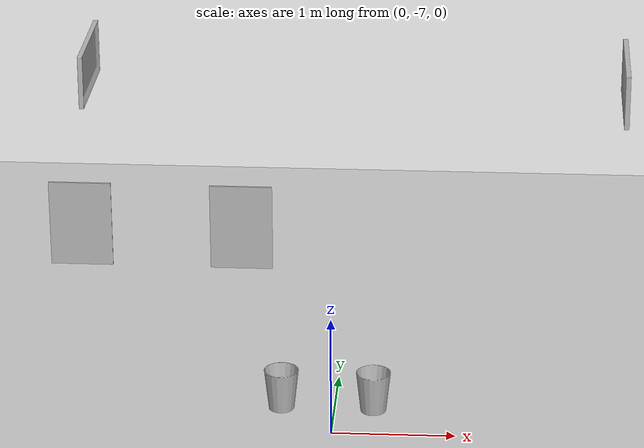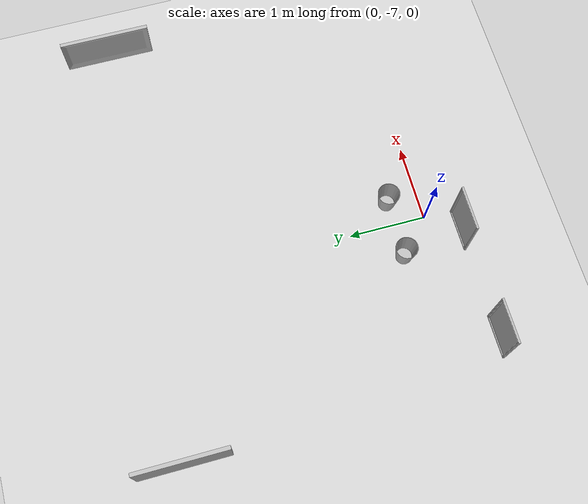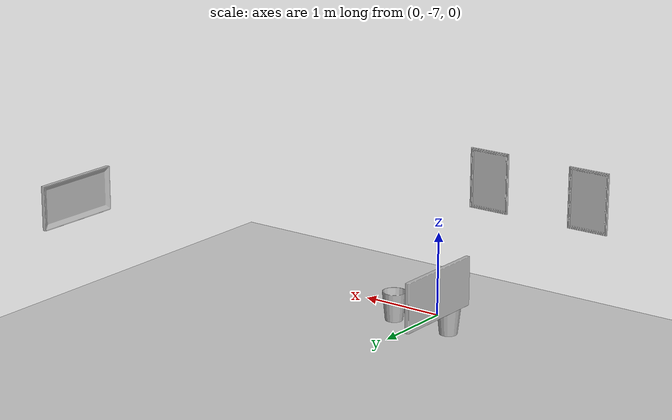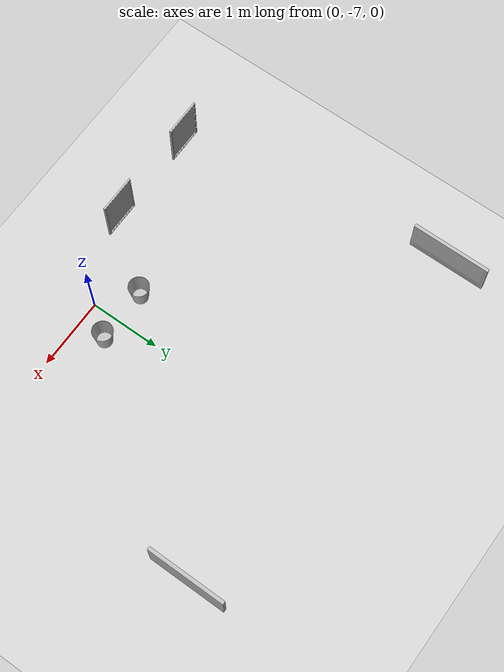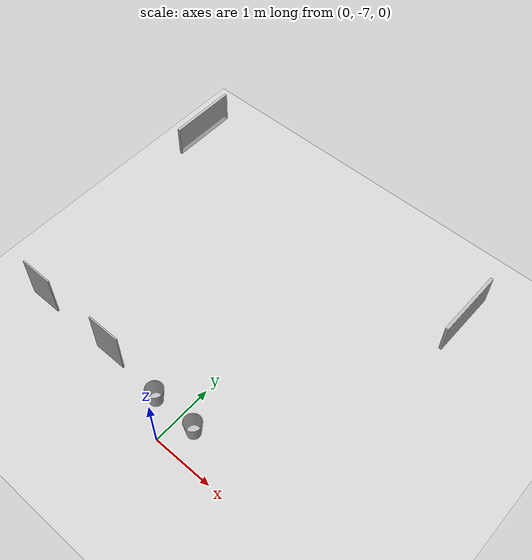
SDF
<sdf version="1.7">
 <world name="world">
  <model name="ground_plane">
   <static>1</static>
   <link name="link">
    <collision name="collision">
     <geometry><plane><normal>0 0 1</normal><size>100 100</size></plane></geometry>
     <surface><friction><ode><mu>100</mu><mu2>50</mu2></ode></friction></surface>
    </collision>
    <visual name="visual">
     <cast_shadows>0</cast_shadows>
     <geometry><plane><normal>0 0 1</normal><size>100 100</size></plane></geometry>
     <material>
      <script><uri>file://media/materials/scripts/gazebo.material</uri><name>Gazebo/Grey</name></script>
     </material>
    </visual>
   </link>
   <pose>0 0 -0.1 0 -0 0</pose>
  </model>
  <model name="aws_robomaker_residential_PortraitD_02_1">
   <frame name="aws_robomaker_residential_PortraitD_02::__model__" attached_to="aws_robomaker_residential_PortraitD_02::link">
    <pose relative_to="__model__">2.40772 -3.61975 1.54508 0 0 -1.57619</pose>
   </frame>
   <link name="aws_robomaker_residential_PortraitD_02::link">
    <inertial><mass>1.5</mass></inertial>
    <collision name="collision">
     <geometry>
      <mesh>
       <uri>file://models/aws_robomaker_residential_PortraitD_02/meshes/aws_PortraitD_01_collision.DAE</uri>
       <scale>1 1 1</scale>
      </mesh>
     </geometry>
    </collision>
    <visual name="visual">
     <geometry>
      <mesh>
       <uri>file://models/aws_robomaker_residential_PortraitD_02/meshes/aws_PortraitD_01_visual.DAE</uri>
      </mesh>
     </geometry>
     <meta><layer>2</layer></meta>
    </visual>
    <pose relative_to="aws_robomaker_residential_PortraitD_02::__model__">0 0 0 0 -0 0</pose>
   </link>
   <static>1</static>
  </model>
  <model name="MopCart3_1"/>
  <model name="MaleVisitorSit_1"/>
  <model name="Drawer_1"/>
  <model name="Drawer_2"/>
  <model name="OfficeChairBlack_1"/>
  <model name="OfficeChairBlack_2"/>
  <model name="AdjTable_2"/>
  <model name="aws_robomaker_residential_PortraitA_01_2">
   <frame name="aws_robomaker_residential_PortraitA_01::__model__" attached_to="aws_robomaker_residential_PortraitA_01::link">
    <pose relative_to="__model__">-0.706092 -6.93108 1.41115 0 -0 0</pose>
   </frame>
   <link name="aws_robomaker_residential_PortraitA_01::link">
    <inertial><mass>1</mass></inertial>
    <collision name="collision">
     <geometry>
      <mesh>
       <uri>file://models/aws_robomaker_residential_PortraitA_01/meshes/aws_PortraitA_01_collision.DAE</uri>
       <scale>1 1 1</scale>
      </mesh>
     </geometry>
    </collision>
    <visual name="visual">
     <geometry>
      <mesh>
       <uri>file://models/aws_robomaker_residential_PortraitA_01/meshes/aws_PortraitA_01_visual.DAE</uri>
      </mesh>
     </geometry>
     <meta><layer>2</layer></meta>
    </visual>
    <pose relative_to="aws_robomaker_residential_PortraitA_01::__model__">0 0 0 0 -0 0</pose>
   </link>
   <static>1</static>
  </model>
  <model name="aws_robomaker_residential_PortraitA_01_3">
   <frame name="aws_robomaker_residential_PortraitA_01::__model__" attached_to="aws_robomaker_residential_PortraitA_01::link">
    <pose relative_to="__model__">-1.97245 -6.9216 1.41115 0 -0 0</pose>
   </frame>
   <link name="aws_robomaker_residential_PortraitA_01::link">
    <inertial><mass>1</mass></inertial>
    <collision name="collision">
     <geometry>
      <mesh>
       <uri>file://models/aws_robomaker_residential_PortraitA_01/meshes/aws_PortraitA_01_collision.DAE</uri>
       <scale>1 1 1</scale>
      </mesh>
     </geometry>
    </collision>
    <visual name="visual">
     <geometry>
      <mesh>
       <uri>file://models/aws_robomaker_residential_PortraitA_01/meshes/aws_PortraitA_01_visual.DAE</uri>
      </mesh>
     </geometry>
     <meta><layer>2</layer></meta>
    </visual>
    <pose relative_to="aws_robomaker_residential_PortraitA_01::__model__">0 0 0 0 -0 0</pose>
   </link>
   <static>1</static>
  </model>
  <model name="Drawer_3"/>
  <model name="Drawer_4"/>
  <model name="aws_robomaker_residential_PortraitD_02_2">
   <frame name="aws_robomaker_residential_PortraitD_02::__model__" attached_to="aws_robomaker_residential_PortraitD_02::link">
    <pose relative_to="__model__">-2.43341 -3.38621 1.54508 0 -0 1.57083</pose>
   </frame>
   <link name="aws_robomaker_residential_PortraitD_02::link">
    <inertial><mass>1.5</mass></inertial>
    <collision name="collision">
     <geometry>
      <mesh>
       <uri>file://models/aws_robomaker_residential_PortraitD_02/meshes/aws_PortraitD_01_collision.DAE</uri>
       <scale>1 1 1</scale>
      </mesh>
     </geometry>
    </collision>
    <visual name="visual">
     <geometry>
      <mesh>
       <uri>file://models/aws_robomaker_residential_PortraitD_02/meshes/aws_PortraitD_01_visual.DAE</uri>
      </mesh>
     </geometry>
     <meta><layer>2</layer></meta>
    </visual>
    <pose relative_to="aws_robomaker_residential_PortraitD_02::__model__">0 0 0 0 -0 0</pose>
   </link>
   <static>1</static>
  </model>
  <model name="ElderLadyPatient_1"/>
  <model name="ElderLadyPatient_2"/>
  <model name="CGMClassic_4"/>
  <model name="aws_robomaker_residential_Trash_01_1">
   <frame name="aws_robomaker_residential_Trash_01::__model__" attached_to="aws_robomaker_residential_Trash_01::link">
    <pose relative_to="__model__">0.316178 -6.58235 0.000903 0 -2e-06 0</pose>
   </frame>
   <link name="aws_robomaker_residential_Trash_01::link">
    <inertial>
     <mass>0.1</mass>
     <inertia><ixy>0</ixy><ixz>0</ixz><iyz>0</iyz><ixx>0.05288</ixx><iyy>0.05288</iyy><izz>0.09132</izz></inertia>
    </inertial>
    <collision name="collision">
     <geometry>
      <mesh>
       <uri>file://models/aws_robomaker_residential_Trash_01/meshes/aws_Trash_01_collision.DAE</uri>
       <scale>1 1 1</scale>
      </mesh>
     </geometry>
    </collision>
    <visual name="visual">
     <geometry>
      <mesh><uri>file://models/aws_robomaker_residential_Trash_01/meshes/aws_Trash_01_visual.DAE</uri></mesh>
     </geometry>
     <meta><layer>1</layer></meta>
    </visual>
    <pose relative_to="aws_robomaker_residential_Trash_01::__model__">0 0 0 0 -0 0</pose>
   </link>
   <static>1</static>
  </model>
  <model name="aws_robomaker_residential_Trash_01_2">
   <frame name="aws_robomaker_residential_Trash_01::__model__" attached_to="aws_robomaker_residential_Trash_01::link">
    <pose relative_to="__model__">-0.436645 -6.57758 0.000903 -1e-06 -1e-06 0</pose>
   </frame>
   <link name="aws_robomaker_residential_Trash_01::link">
    <inertial>
     <mass>0.1</mass>
     <inertia><ixy>0</ixy><ixz>0</ixz><iyz>0</iyz><ixx>0.05288</ixx><iyy>0.05288</iyy><izz>0.09132</izz></inertia>
    </inertial>
    <collision name="collision">
     <geometry>
      <mesh>
       <uri>file://models/aws_robomaker_residential_Trash_01/meshes/aws_Trash_01_collision.DAE</uri>
       <scale>1 1 1</scale>
      </mesh>
     </geometry>
    </collision>
    <visual name="visual">
     <geometry>
      <mesh><uri>file://models/aws_robomaker_residential_Trash_01/meshes/aws_Trash_01_visual.DAE</uri></mesh>
     </geometry>
     <meta><layer>1</layer></meta>
    </visual>
    <pose relative_to="aws_robomaker_residential_Trash_01::__model__">0 0 0 0 -0 0</pose>
   </link>
   <static>1</static>
  </model>
 </world>
</sdf>
